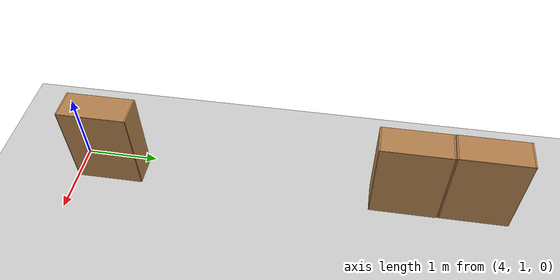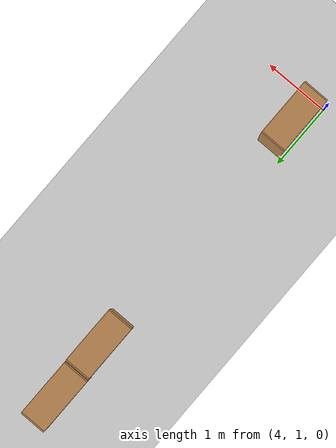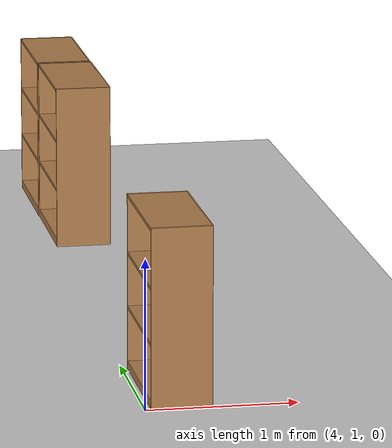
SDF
<sdf version="1.6">
 <world name="default">
  <model name="ground_plane">
   <static>1</static>
   <link name="link">
    <collision name="collision">
     <geometry><plane><normal>0 0 1</normal><size>100 100</size></plane></geometry>
     <surface>
      <contact><collide_bitmask>65535</collide_bitmask></contact>
      <friction><ode><mu>100</mu><mu2>50</mu2></ode></friction>
     </surface>
    </collision>
    <visual name="visual">
     <cast_shadows>0</cast_shadows>
     <geometry><plane><normal>0 0 1</normal><size>100 100</size></plane></geometry>
     <material>
      <script><uri>file://media/materials/scripts/gazebo.material</uri><name>Gazebo/Grey</name></script>
     </material>
    </visual>
   </link>
  </model>
  <model name="bookshelf">
   <static>1</static>
   <link name="link">
    <inertial><mass>1</mass></inertial>
    <collision name="back">
     <pose>0 0.005 0.6 0 -0 0</pose>
     <geometry><box><size>0.9 0.01 1.2</size></box></geometry>
    </collision>
    <visual name="visual1">
     <pose>0 0.005 0.6 0 -0 0</pose>
     <geometry><box><size>0.9 0.01 1.2</size></box></geometry>
     <material>
      <script><uri>file://media/materials/scripts/gazebo.material</uri><name>Gazebo/Wood</name></script>
     </material>
    </visual>
    <collision name="left_side">
     <pose>0.45 -0.195 0.6 0 -0 0</pose>
     <geometry><box><size>0.02 0.4 1.2</size></box></geometry>
    </collision>
    <visual name="visual2">
     <pose>0.45 -0.195 0.6 0 -0 0</pose>
     <geometry><box><size>0.02 0.4 1.2</size></box></geometry>
     <material>
      <script><uri>file://media/materials/scripts/gazebo.material</uri><name>Gazebo/Wood</name></script>
     </material>
    </visual>
    <collision name="right_side">
     <pose>-0.45 -0.195 0.6 0 -0 0</pose>
     <geometry><box><size>0.02 0.4 1.2</size></box></geometry>
    </collision>
    <visual name="visual3">
     <pose>-0.45 -0.195 0.6 0 -0 0</pose>
     <geometry><box><size>0.02 0.4 1.2</size></box></geometry>
     <material>
      <script><uri>file://media/materials/scripts/gazebo.material</uri><name>Gazebo/Wood</name></script>
     </material>
    </visual>
    <collision name="bottom">
     <pose>0 -0.195 0.03 0 -0 0</pose>
     <geometry><box><size>0.88 0.4 0.06</size></box></geometry>
    </collision>
    <visual name="visual4">
     <pose>0 -0.195 0.03 0 -0 0</pose>
     <geometry><box><size>0.88 0.4 0.06</size></box></geometry>
     <material>
      <script><uri>file://media/materials/scripts/gazebo.material</uri><name>Gazebo/Wood</name></script>
     </material>
    </visual>
    <collision name="top">
     <pose>0 -0.195 1.19 0 -0 0</pose>
     <geometry><box><size>0.88 0.4 0.02</size></box></geometry>
    </collision>
    <visual name="visual5">
     <pose>0 -0.195 1.19 0 -0 0</pose>
     <geometry><box><size>0.88 0.4 0.02</size></box></geometry>
     <material>
      <script><uri>file://media/materials/scripts/gazebo.material</uri><name>Gazebo/Wood</name></script>
     </material>
    </visual>
    <collision name="low_shelf">
     <pose>0 -0.195 0.43 0 -0 0</pose>
     <geometry><box><size>0.88 0.4 0.02</size></box></geometry>
    </collision>
    <visual name="visual6">
     <pose>0 -0.195 0.43 0 -0 0</pose>
     <geometry><box><size>0.88 0.4 0.02</size></box></geometry>
     <material>
      <script><uri>file://media/materials/scripts/gazebo.material</uri><name>Gazebo/Wood</name></script>
     </material>
    </visual>
    <collision name="high_shelf">
     <pose>0 -0.195 0.8 0 -0 0</pose>
     <geometry><box><size>0.88 0.4 0.02</size></box></geometry>
    </collision>
    <visual name="visual7">
     <pose>0 -0.195 0.8 0 -0 0</pose>
     <geometry><box><size>0.88 0.4 0.02</size></box></geometry>
     <material>
      <script><uri>file://media/materials/scripts/gazebo.material</uri><name>Gazebo/Wood</name></script>
     </material>
    </visual>
   </link>
   <pose>4.43002 6.47329 0 0 0 -1.5708</pose>
  </model>
  <model name="bookshelf_clone">
   <static>1</static>
   <link name="link">
    <inertial><mass>1</mass></inertial>
    <collision name="back">
     <pose>0 0.005 0.6 0 -0 0</pose>
     <geometry><box><size>0.9 0.01 1.2</size></box></geometry>
    </collision>
    <visual name="visual1">
     <pose>0 0.005 0.6 0 -0 0</pose>
     <geometry><box><size>0.9 0.01 1.2</size></box></geometry>
     <material>
      <script><uri>file://media/materials/scripts/gazebo.material</uri><name>Gazebo/Wood</name></script>
     </material>
    </visual>
    <collision name="left_side">
     <pose>0.45 -0.195 0.6 0 -0 0</pose>
     <geometry><box><size>0.02 0.4 1.2</size></box></geometry>
    </collision>
    <visual name="visual2">
     <pose>0.45 -0.195 0.6 0 -0 0</pose>
     <geometry><box><size>0.02 0.4 1.2</size></box></geometry>
     <material>
      <script><uri>file://media/materials/scripts/gazebo.material</uri><name>Gazebo/Wood</name></script>
     </material>
    </visual>
    <collision name="right_side">
     <pose>-0.45 -0.195 0.6 0 -0 0</pose>
     <geometry><box><size>0.02 0.4 1.2</size></box></geometry>
    </collision>
    <visual name="visual3">
     <pose>-0.45 -0.195 0.6 0 -0 0</pose>
     <geometry><box><size>0.02 0.4 1.2</size></box></geometry>
     <material>
      <script><uri>file://media/materials/scripts/gazebo.material</uri><name>Gazebo/Wood</name></script>
     </material>
    </visual>
    <collision name="bottom">
     <pose>0 -0.195 0.03 0 -0 0</pose>
     <geometry><box><size>0.88 0.4 0.06</size></box></geometry>
    </collision>
    <visual name="visual4">
     <pose>0 -0.195 0.03 0 -0 0</pose>
     <geometry><box><size>0.88 0.4 0.06</size></box></geometry>
     <material>
      <script><uri>file://media/materials/scripts/gazebo.material</uri><name>Gazebo/Wood</name></script>
     </material>
    </visual>
    <collision name="top">
     <pose>0 -0.195 1.19 0 -0 0</pose>
     <geometry><box><size>0.88 0.4 0.02</size></box></geometry>
    </collision>
    <visual name="visual5">
     <pose>0 -0.195 1.19 0 -0 0</pose>
     <geometry><box><size>0.88 0.4 0.02</size></box></geometry>
     <material>
      <script><uri>file://media/materials/scripts/gazebo.material</uri><name>Gazebo/Wood</name></script>
     </material>
    </visual>
    <collision name="low_shelf">
     <pose>0 -0.195 0.43 0 -0 0</pose>
     <geometry><box><size>0.88 0.4 0.02</size></box></geometry>
    </collision>
    <visual name="visual6">
     <pose>0 -0.195 0.43 0 -0 0</pose>
     <geometry><box><size>0.88 0.4 0.02</size></box></geometry>
     <material>
      <script><uri>file://media/materials/scripts/gazebo.material</uri><name>Gazebo/Wood</name></script>
     </material>
    </visual>
    <collision name="high_shelf">
     <pose>0 -0.195 0.8 0 -0 0</pose>
     <geometry><box><size>0.88 0.4 0.02</size></box></geometry>
    </collision>
    <visual name="visual7">
     <pose>0 -0.195 0.8 0 -0 0</pose>
     <geometry><box><size>0.88 0.4 0.02</size></box></geometry>
     <material>
      <script><uri>file://media/materials/scripts/gazebo.material</uri><name>Gazebo/Wood</name></script>
     </material>
    </visual>
   </link>
   <pose>4.43485 5.54209 0 0 0 -1.5708</pose>
  </model>
  <model name="bookshelf_clone_0">
   <static>1</static>
   <link name="link">
    <inertial><mass>1</mass></inertial>
    <collision name="back">
     <pose>0 0.005 0.6 0 -0 0</pose>
     <geometry><box><size>0.9 0.01 1.2</size></box></geometry>
    </collision>
    <visual name="visual1">
     <pose>0 0.005 0.6 0 -0 0</pose>
     <geometry><box><size>0.9 0.01 1.2</size></box></geometry>
     <material>
      <script><uri>file://media/materials/scripts/gazebo.material</uri><name>Gazebo/Wood</name></script>
     </material>
    </visual>
    <collision name="left_side">
     <pose>0.45 -0.195 0.6 0 -0 0</pose>
     <geometry><box><size>0.02 0.4 1.2</size></box></geometry>
    </collision>
    <visual name="visual2">
     <pose>0.45 -0.195 0.6 0 -0 0</pose>
     <geometry><box><size>0.02 0.4 1.2</size></box></geometry>
     <material>
      <script><uri>file://media/materials/scripts/gazebo.material</uri><name>Gazebo/Wood</name></script>
     </material>
    </visual>
    <collision name="right_side">
     <pose>-0.45 -0.195 0.6 0 -0 0</pose>
     <geometry><box><size>0.02 0.4 1.2</size></box></geometry>
    </collision>
    <visual name="visual3">
     <pose>-0.45 -0.195 0.6 0 -0 0</pose>
     <geometry><box><size>0.02 0.4 1.2</size></box></geometry>
     <material>
      <script><uri>file://media/materials/scripts/gazebo.material</uri><name>Gazebo/Wood</name></script>
     </material>
    </visual>
    <collision name="bottom">
     <pose>0 -0.195 0.03 0 -0 0</pose>
     <geometry><box><size>0.88 0.4 0.06</size></box></geometry>
    </collision>
    <visual name="visual4">
     <pose>0 -0.195 0.03 0 -0 0</pose>
     <geometry><box><size>0.88 0.4 0.06</size></box></geometry>
     <material>
      <script><uri>file://media/materials/scripts/gazebo.material</uri><name>Gazebo/Wood</name></script>
     </material>
    </visual>
    <collision name="top">
     <pose>0 -0.195 1.19 0 -0 0</pose>
     <geometry><box><size>0.88 0.4 0.02</size></box></geometry>
    </collision>
    <visual name="visual5">
     <pose>0 -0.195 1.19 0 -0 0</pose>
     <geometry><box><size>0.88 0.4 0.02</size></box></geometry>
     <material>
      <script><uri>file://media/materials/scripts/gazebo.material</uri><name>Gazebo/Wood</name></script>
     </material>
    </visual>
    <collision name="low_shelf">
     <pose>0 -0.195 0.43 0 -0 0</pose>
     <geometry><box><size>0.88 0.4 0.02</size></box></geometry>
    </collision>
    <visual name="visual6">
     <pose>0 -0.195 0.43 0 -0 0</pose>
     <geometry><box><size>0.88 0.4 0.02</size></box></geometry>
     <material>
      <script><uri>file://media/materials/scripts/gazebo.material</uri><name>Gazebo/Wood</name></script>
     </material>
    </visual>
    <collision name="high_shelf">
     <pose>0 -0.195 0.8 0 -0 0</pose>
     <geometry><box><size>0.88 0.4 0.02</size></box></geometry>
    </collision>
    <visual name="visual7">
     <pose>0 -0.195 0.8 0 -0 0</pose>
     <geometry><box><size>0.88 0.4 0.02</size></box></geometry>
     <material>
      <script><uri>file://media/materials/scripts/gazebo.material</uri><name>Gazebo/Wood</name></script>
     </material>
    </visual>
   </link>
   <pose>4.43323 1.4649 0 0 0 -1.5708</pose>
  </model>
  <model name="package_box">
   <link name="link">
    <inertial>
     <mass>1</mass>
     <inertia>
      <ixx>0.166667</ixx>
      <ixy>0</ixy>
      <ixz>0</ixz>
      <iyy>0.166667</iyy>
      <iyz>0</iyz>
      <izz>0.166667</izz>
     </inertia>
    </inertial>
    <visual name="visual">
     <geometry><box><size>0.186354 0.153313 0.168908</size></box></geometry>
     <material>
      <script><name>Gazebo/White</name><uri>file://media/materials/scripts/gazebo.material</uri></script>
      <shader type="pixel"><normal_map>__default__</normal_map></shader>
      <ambient>1 1 1 1</ambient>
      <diffuse>1 1 1 1</diffuse>
      <specular>0 0 0 1</specular>
      <emissive>0 0 0 1</emissive>
     </material>
    </visual>
    <collision name="collision">
     <geometry><box><size>0.186354 0.153313 0.168908</size></box></geometry>
     <surface>
      <friction>
       <ode><mu>1</mu><mu2>1</mu2><fdir1>0 0 0</fdir1><slip1>0</slip1><slip2>0</slip2></ode>
       <torsional>
        <coefficient>1</coefficient>
        <patch_radius>0</patch_radius>
        <surface_radius>0</surface_radius>
        <use_patch_radius>1</use_patch_radius>
        <ode><slip>0</slip></ode>
       </torsional>
      </friction>
      <bounce><restitution_coefficient>0</restitution_coefficient><threshold>1e+06</threshold></bounce>
      <contact>
       <collide_without_contact>0</collide_without_contact>
       <collide_without_contact_bitmask>1</collide_without_contact_bitmask>
       <collide_bitmask>1</collide_bitmask>
       <ode>
        <soft_cfm>0</soft_cfm>
        <soft_erp>0.2</soft_erp>
        <kp>1e+13</kp>
        <kd>1</kd>
        <max_vel>0.01</max_vel>
        <min_depth>0</min_depth>
       </ode>
       <bullet>
        <split_impulse>1</split_impulse>
        <split_impulse_penetration_threshold>-0.01</split_impulse_penetration_threshold>
        <soft_cfm>0</soft_cfm>
        <soft_erp>0.2</soft_erp>
        <kp>1e+13</kp>
        <kd>1</kd>
       </bullet>
      </contact>
     </surface>
    </collision>
   </link>
   <static>0</static>
   <pose>4.23822 1.24365 0.524454 -2e-06 -2e-06 0.000101</pose>
  </model>
 </world>
</sdf>
